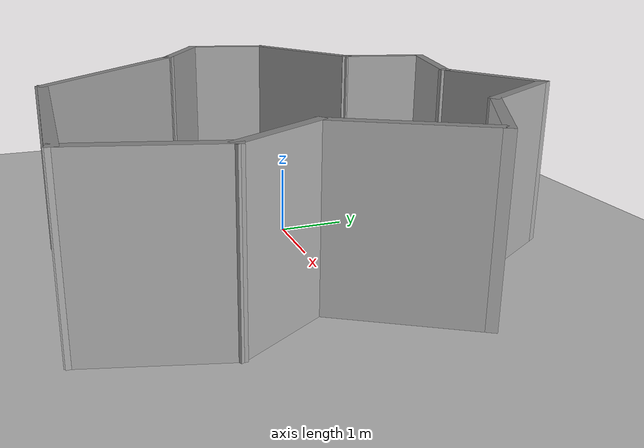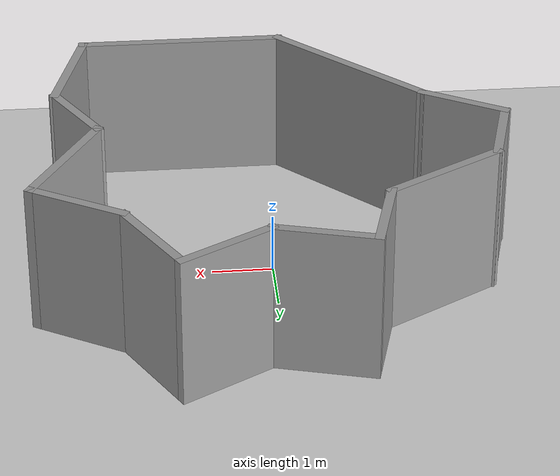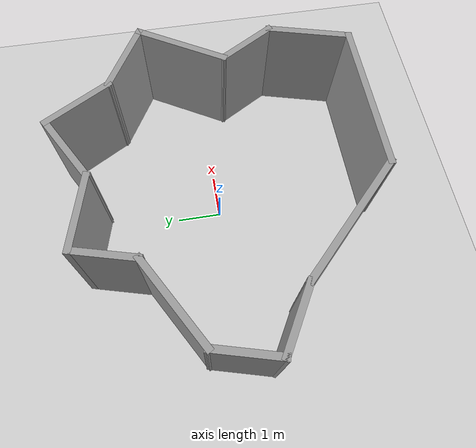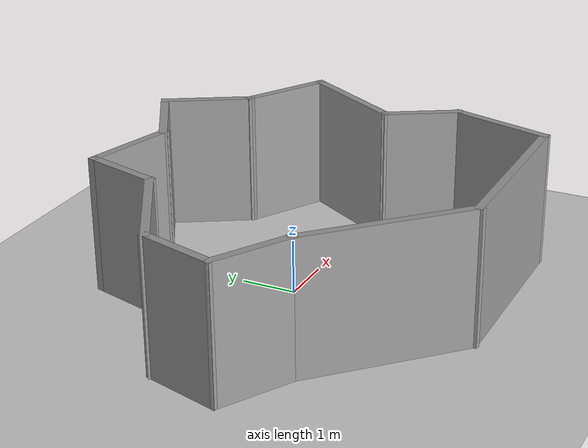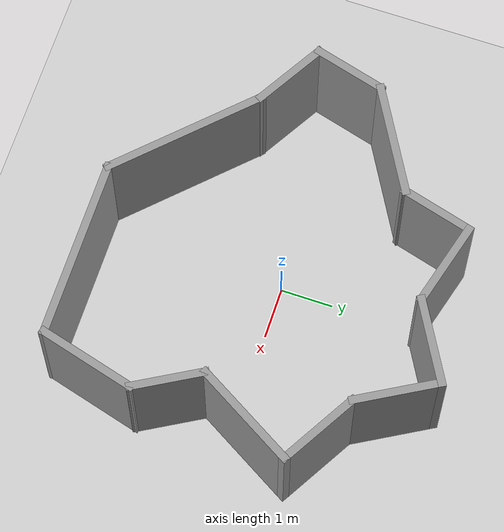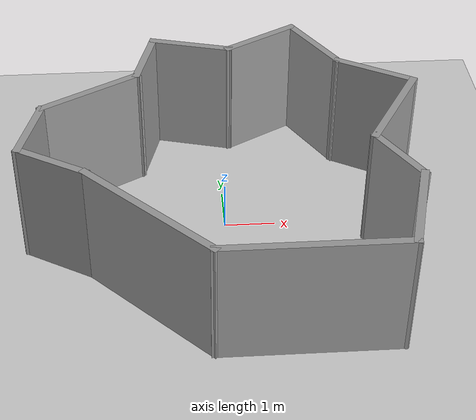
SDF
<sdf version="1.7">
 <world name="default">
  <light name="sun" type="directional">
   <pose>0 0 10 0 -0 0</pose>
   <diffuse>0.8 0.8 0.8 1</diffuse>
   <specular>0.2 0.2 0.2 1</specular>
   <attenuation>
    <range>1000</range>
    <constant>0.9</constant>
    <linear>0.01</linear>
    <quadratic>0.001</quadratic>
   </attenuation>
   <direction>-0.5 0.1 -0.9</direction>
   <spot><inner_angle>0</inner_angle><outer_angle>0</outer_angle><falloff>0</falloff></spot>
  </light>
  <model name="ground_plane">
   <static>1</static>
   <link name="link">
    <collision name="collision">
     <geometry><plane><normal>0 0 1</normal><size>100 100</size></plane></geometry>
     <surface>
      <contact><collide_bitmask>65535</collide_bitmask></contact>
      <friction><ode><mu>100</mu><mu2>50</mu2></ode></friction>
     </surface>
    </collision>
    <visual name="visual">
     <cast_shadows>0</cast_shadows>
     <geometry><plane><normal>0 0 1</normal><size>100 100</size></plane></geometry>
     <material>
      <script><uri>file://media/materials/scripts/gazebo.material</uri><name>Gazebo/Grey</name></script>
     </material>
    </visual>
   </link>
  </model>
  <gravity>0 0 -9.8</gravity>
  <magnetic_field>6e-06 2.3e-05 -4.2e-05</magnetic_field>
  <atmosphere type="adiabatic"/>
  <physics type="ode">
   <max_step_size>0.001</max_step_size>
   <real_time_factor>1</real_time_factor>
   <real_time_update_rate>1000</real_time_update_rate>
  </physics>
  <scene><ambient>0.4 0.4 0.4 1</ambient><background>0.7 0.7 0.7 1</background><shadows>1</shadows></scene>
  <audio><device>default</device></audio>
  <spherical_coordinates>
   <surface_model>EARTH_WGS84</surface_model>
   <latitude_deg>0</latitude_deg>
   <longitude_deg>0</longitude_deg>
   <elevation>0</elevation>
   <heading_deg>0</heading_deg>
  </spherical_coordinates>
  <model name="walls">
   <pose>-0.004907 0.000698 0 0 -0 0</pose>
   <link name="Wall_0">
    <collision name="Wall_0_Collision">
     <geometry><box><size>3.25 0.15 2.5</size></box></geometry>
     <pose>0 0 1.25 0 -0 0</pose>
    </collision>
    <visual name="Wall_0_Visual">
     <pose>0 0 1.25 0 -0 0</pose>
     <geometry><box><size>3.25 0.15 2.5</size></box></geometry>
     <material>
      <script><uri>file://media/materials/scripts/gazebo.material</uri><name>Gazebo/Grey</name></script>
      <ambient>1 1 1 1</ambient>
     </material>
     <meta><layer>0</layer></meta>
    </visual>
    <pose>-1.48264 -2.38237 0 0 -0 -0.785398</pose>
   </link>
   <link name="Wall_1">
    <collision name="Wall_1_Collision">
     <geometry><box><size>3.5 0.15 2.5</size></box></geometry>
     <pose>0 0 1.25 0 -0 0</pose>
    </collision>
    <visual name="Wall_1_Visual">
     <pose>0 0 1.25 0 -0 0</pose>
     <geometry><box><size>3.5 0.15 2.5</size></box></geometry>
     <material>
      <script><uri>file://media/materials/scripts/gazebo.material</uri><name>Gazebo/Grey</name></script>
      <ambient>1 1 1 1</ambient>
     </material>
     <meta><layer>0</layer></meta>
    </visual>
    <pose>1.28838 -3.47839 0 0 -0 0</pose>
   </link>
   <link name="Wall_10">
    <collision name="Wall_10_Collision">
     <geometry><box><size>2.25 0.15 2.5</size></box></geometry>
     <pose>0 0 1.25 0 -0 0</pose>
    </collision>
    <visual name="Wall_10_Visual">
     <pose>0 0 1.25 0 -0 0</pose>
     <geometry><box><size>2.25 0.15 2.5</size></box></geometry>
     <material>
      <script><uri>file://media/materials/scripts/gazebo.material</uri><name>Gazebo/Grey</name></script>
      <ambient>1 1 1 1</ambient>
     </material>
     <meta><layer>0</layer></meta>
    </visual>
    <pose>-2.5583 1.26711 0 0 -0 -2.61799</pose>
   </link>
   <link name="Wall_11">
    <collision name="Wall_11_Collision">
     <geometry><box><size>1.5 0.15 2.5</size></box></geometry>
     <pose>0 0 1.25 0 -0 0</pose>
    </collision>
    <visual name="Wall_11_Visual">
     <pose>0 0 1.25 0 -0 0</pose>
     <geometry><box><size>1.5 0.15 2.5</size></box></geometry>
     <material>
      <script><uri>file://media/materials/scripts/gazebo.material</uri><name>Gazebo/Grey</name></script>
      <ambient>1 1 1 1</ambient>
     </material>
     <meta><layer>0</layer></meta>
    </visual>
    <pose>-3.64233 0.090113 0 0 -0 -1.8326</pose>
   </link>
   <link name="Wall_12">
    <collision name="Wall_12_Collision">
     <geometry><box><size>1.58473 0.15 2.5</size></box></geometry>
     <pose>0 0 1.25 0 -0 0</pose>
    </collision>
    <visual name="Wall_12_Visual">
     <pose>0 0 1.25 0 -0 0</pose>
     <geometry><box><size>1.58473 0.15 2.5</size></box></geometry>
     <material>
      <script><uri>file://media/materials/scripts/gazebo.material</uri><name>Gazebo/Grey</name></script>
      <ambient>1 1 1 1</ambient>
     </material>
     <meta><layer>0</layer></meta>
    </visual>
    <pose>-3.19785 -0.924122 0 0 -0 -0.529328</pose>
   </link>
   <link name="Wall_2">
    <collision name="Wall_2_Collision">
     <geometry><box><size>2 0.15 2.5</size></box></geometry>
     <pose>0 0 1.25 0 -0 0</pose>
    </collision>
    <visual name="Wall_2_Visual">
     <pose>0 0 1.25 0 -0 0</pose>
     <geometry><box><size>2 0.15 2.5</size></box></geometry>
     <material>
      <script><uri>file://media/materials/scripts/gazebo.material</uri><name>Gazebo/Grey</name></script>
      <ambient>1 1 1 1</ambient>
     </material>
     <meta><layer>0</layer></meta>
    </visual>
    <pose>3.20278 -2.58491 0 0 -0 1.309</pose>
   </link>
   <link name="Wall_3">
    <collision name="Wall_3_Collision">
     <geometry><box><size>1.5 0.15 2.5</size></box></geometry>
     <pose>0 0 1.25 0 -0 0</pose>
    </collision>
    <visual name="Wall_3_Visual">
     <pose>0 0 1.25 0 -0 0</pose>
     <geometry><box><size>1.5 0.15 2.5</size></box></geometry>
     <material>
      <script><uri>file://media/materials/scripts/gazebo.material</uri><name>Gazebo/Grey</name></script>
      <ambient>1 1 1 1</ambient>
     </material>
     <meta><layer>0</layer></meta>
    </visual>
    <pose>3.10469 -1.10686 0 0 -0 2.0944</pose>
   </link>
   <link name="Wall_4">
    <collision name="Wall_4_Collision">
     <geometry><box><size>2.25 0.15 2.5</size></box></geometry>
     <pose>0 0 1.25 0 -0 0</pose>
    </collision>
    <visual name="Wall_4_Visual">
     <pose>0 0 1.25 0 -0 0</pose>
     <geometry><box><size>2.25 0.15 2.5</size></box></geometry>
     <material>
      <script><uri>file://media/materials/scripts/gazebo.material</uri><name>Gazebo/Grey</name></script>
      <ambient>1 1 1 1</ambient>
     </material>
     <meta><layer>0</layer></meta>
    </visual>
    <pose>3.29219 0.387035 0 0 -0 1.0472</pose>
   </link>
   <link name="Wall_5">
    <collision name="Wall_5_Collision">
     <geometry><box><size>1.75 0.15 2.5</size></box></geometry>
     <pose>0 0 1.25 0 -0 0</pose>
    </collision>
    <visual name="Wall_5_Visual">
     <pose>0 0 1.25 0 -0 0</pose>
     <geometry><box><size>1.75 0.15 2.5</size></box></geometry>
     <material>
      <script><uri>file://media/materials/scripts/gazebo.material</uri><name>Gazebo/Grey</name></script>
      <ambient>1 1 1 1</ambient>
     </material>
     <meta><layer>0</layer></meta>
    </visual>
    <pose>3.12437 1.69636 0 0 -0 2.61799</pose>
   </link>
   <link name="Wall_6">
    <collision name="Wall_6_Collision">
     <geometry><box><size>1.75 0.15 2.5</size></box></geometry>
     <pose>0 0 1.25 0 -0 0</pose>
    </collision>
    <visual name="Wall_6_Visual">
     <pose>0 0 1.25 0 -0 0</pose>
     <geometry><box><size>1.75 0.15 2.5</size></box></geometry>
     <material>
      <script><uri>file://media/materials/scripts/gazebo.material</uri><name>Gazebo/Grey</name></script>
      <ambient>1 1 1 1</ambient>
     </material>
     <meta><layer>0</layer></meta>
    </visual>
    <pose>2.03155 2.78918 0 0 -0 2.0944</pose>
   </link>
   <link name="Wall_7">
    <collision name="Wall_7_Collision">
     <geometry><box><size>1.75 0.15 2.5</size></box></geometry>
     <pose>0 0 1.25 0 -0 0</pose>
    </collision>
    <visual name="Wall_7_Visual">
     <pose>0 0 1.25 0 -0 0</pose>
     <geometry><box><size>1.75 0.15 2.5</size></box></geometry>
     <material>
      <script><uri>file://media/materials/scripts/gazebo.material</uri><name>Gazebo/Grey</name></script>
      <ambient>1 1 1 1</ambient>
     </material>
     <meta><layer>0</layer></meta>
    </visual>
    <pose>0.93873 3.082 0 0 -0 -2.61799</pose>
   </link>
   <link name="Wall_8">
    <collision name="Wall_8_Collision">
     <geometry><box><size>1.75 0.15 2.5</size></box></geometry>
     <pose>0 0 1.25 0 -0 0</pose>
    </collision>
    <visual name="Wall_8_Visual">
     <pose>0 0 1.25 0 -0 0</pose>
     <geometry><box><size>1.75 0.15 2.5</size></box></geometry>
     <material>
      <script><uri>file://media/materials/scripts/gazebo.material</uri><name>Gazebo/Grey</name></script>
      <ambient>1 1 1 1</ambient>
     </material>
     <meta><layer>0</layer></meta>
    </visual>
    <pose>-0.526831 2.88906 0 0 -0 2.87979</pose>
   </link>
   <link name="Wall_9">
    <collision name="Wall_9_Collision">
     <geometry><box><size>1.5 0.15 2.5</size></box></geometry>
     <pose>0 0 1.25 0 -0 0</pose>
    </collision>
    <visual name="Wall_9_Visual">
     <pose>0 0 1.25 0 -0 0</pose>
     <geometry><box><size>1.5 0.15 2.5</size></box></geometry>
     <material>
      <script><uri>file://media/materials/scripts/gazebo.material</uri><name>Gazebo/Grey</name></script>
      <ambient>1 1 1 1</ambient>
     </material>
     <meta><layer>0</layer></meta>
    </visual>
    <pose>-1.47427 2.44411 0 0 -0 -1.8326</pose>
   </link>
   <static>1</static>
  </model>
 </world>
</sdf>
